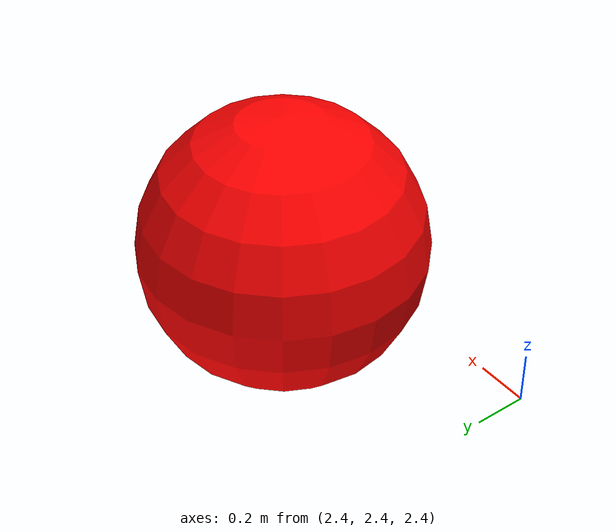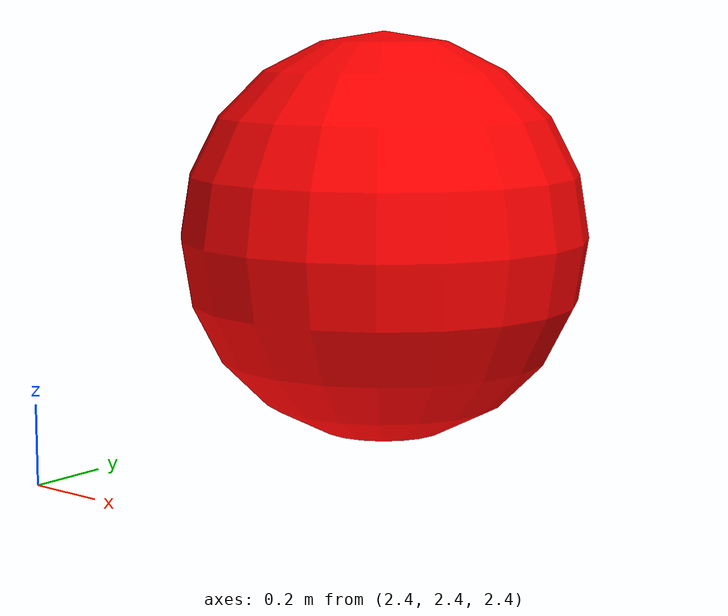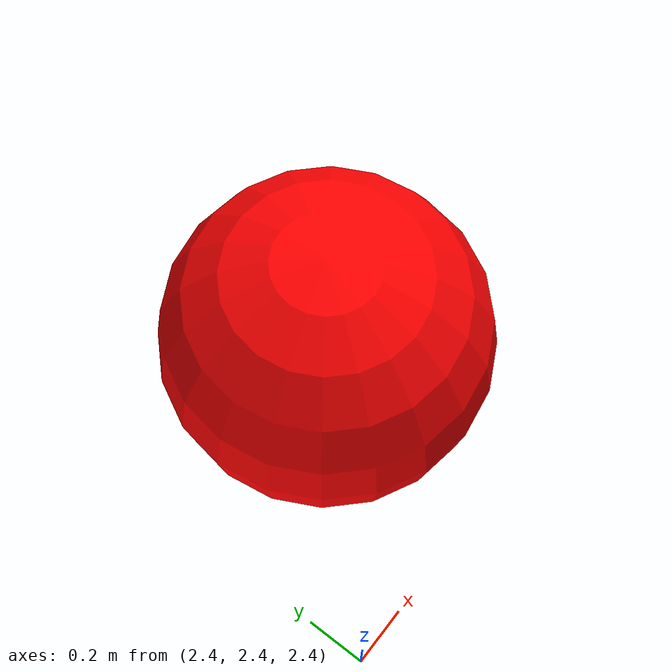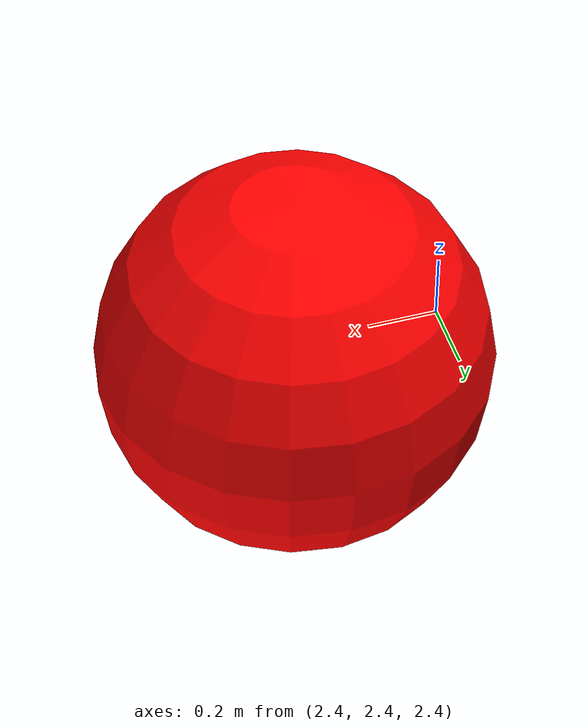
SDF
<?xml version="1.0"?>
<sdf version="1.6">
  <model name="red_sphere">
    <pose>3 3 3 0 0 0</pose>

    <link name="link">

      <!-- 可视部分 -->
      <visual name="visual">
        <geometry>
          <sphere>
            <radius>0.5</radius>
          </sphere>
        </geometry>

        <material>
          <ambient>1.0 0.0 0.0 1</ambient>
          <diffuse>1.0 0.0 0.0 1</diffuse>
          <specular>0 0 0 1</specular>
          <emissive>0.0 0.0 0.0 1</emissive>
        </material>
      </visual>

      <!-- 碰撞体 -->
      <collision name="collision">
        <geometry>
          <sphere>
            <radius>0.5</radius>
          </sphere>
        </geometry>
      </collision>

      <!-- 惯性 -->
      <inertial>
        <mass>1.0</mass>
        <inertia>
          <ixx>0.1</ixx>
          <iyy>0.1</iyy>
          <izz>0.1</izz>
        </inertia>
      </inertial>

    </link>
  </model>
</sdf>
